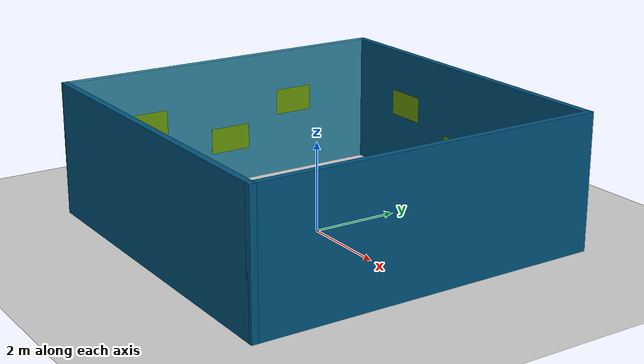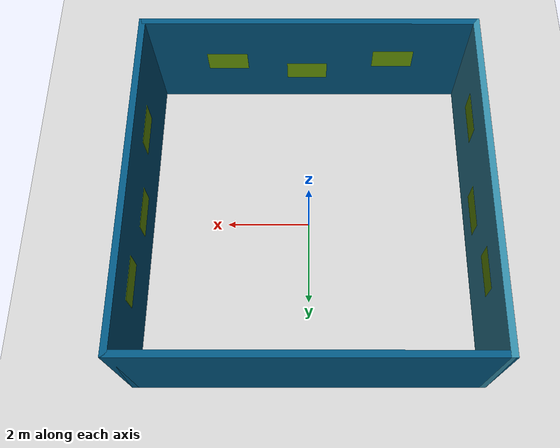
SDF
<sdf version="1.6">
 <world name="default">
  <light name="sun" type="directional">
   <pose>0 0 10 0 -0 0</pose>
   <diffuse>0.8 0.8 0.8 1</diffuse>
   <specular>0.1 0.1 0.1 1</specular>
   <attenuation>
    <range>1000</range>
    <constant>0.9</constant>
    <linear>0.01</linear>
    <quadratic>0.001</quadratic>
   </attenuation>
   <direction>-0.5 0.5 -1</direction>
  </light>
  <model name="ground_plane">
   <static>1</static>
   <link name="link">
    <collision name="collision">
     <geometry><plane><normal>0 0 1</normal><size>100 100</size></plane></geometry>
     <surface><friction><ode><mu>100</mu><mu2>50</mu2></ode></friction></surface>
    </collision>
    <visual name="visual">
     <cast_shadows>0</cast_shadows>
     <geometry><plane><normal>0 0 1</normal><size>100 100</size></plane></geometry>
     <material>
      <script><uri>file://media/materials/scripts/gazebo.material</uri><name>Gazebo/Grey</name></script>
     </material>
    </visual>
   </link>
  </model>
  <gravity>0 0 -9.8</gravity>
  <magnetic_field>6e-06 2.3e-05 -4.2e-05</magnetic_field>
  <atmosphere type="adiabatic"/>
  <physics name="default_physics" default="0" type="ode">
   <max_step_size>0.001</max_step_size>
   <real_time_factor>1</real_time_factor>
   <real_time_update_rate>1000</real_time_update_rate>
  </physics>
  <scene><ambient>0.4 0.4 0.4 1</ambient><background>0.7 0.7 0.7 1</background><shadows>1</shadows></scene>
  <spherical_coordinates>
   <surface_model>EARTH_WGS84</surface_model>
   <latitude_deg>0</latitude_deg>
   <longitude_deg>0</longitude_deg>
   <elevation>0</elevation>
   <heading_deg>0</heading_deg>
  </spherical_coordinates>
  <model name="BlueWall">
   <link name="Wall_10">
    <collision name="Wall_10_Collision">
     <geometry><box><size>8 0.15 3</size></box></geometry>
     <pose>0 0 1.5 0 -0 0</pose>
    </collision>
    <visual name="Wall_10_Visual">
     <pose>0 0 1.5 0 -0 0</pose>
     <geometry><box><size>8 0.15 3</size></box></geometry>
     <material>
      <script><uri>file://media/materials/scripts/gazebo.material</uri><name>Gazebo/Grey</name></script>
      <ambient>0 0.333333 0.498039 1</ambient>
     </material>
    </visual>
    <pose>0 -3.925 0 0 -0 0</pose>
   </link>
   <link name="Wall_13">
    <collision name="Wall_13_Collision">
     <geometry><box><size>8 0.15 3</size></box></geometry>
     <pose>0 0 1.5 0 -0 0</pose>
    </collision>
    <visual name="Wall_13_Visual">
     <pose>0 0 1.5 0 -0 0</pose>
     <geometry><box><size>8 0.15 3</size></box></geometry>
     <material>
      <script><uri>file://media/materials/scripts/gazebo.material</uri><name>Gazebo/Grey</name></script>
      <ambient>0.196078 0.537255 0.647059 1</ambient>
     </material>
    </visual>
    <pose>-3.925 0 0 0 -0 1.5708</pose>
   </link>
   <link name="Wall_14">
    <collision name="Wall_14_Collision">
     <geometry><box><size>8 0.15 3</size></box></geometry>
     <pose>0 0 1.5 0 -0 0</pose>
    </collision>
    <visual name="Wall_14_Visual">
     <pose>0 0 1.5 0 -0 0</pose>
     <geometry><box><size>8 0.15 3</size></box></geometry>
     <material>
      <script><uri>file://media/materials/scripts/gazebo.material</uri><name>Gazebo/Grey</name></script>
      <ambient>0 0.333333 0.498039 1</ambient>
     </material>
    </visual>
    <pose>0 3.925 0 0 -0 0</pose>
   </link>
   <link name="Wall_15">
    <collision name="Wall_15_Collision">
     <geometry><box><size>8 0.15 3</size></box></geometry>
     <pose>0 0 1.5 0 -0 0</pose>
    </collision>
    <visual name="Wall_15_Visual">
     <pose>0 0 1.5 0 -0 0</pose>
     <geometry><box><size>8 0.15 3</size></box></geometry>
     <material>
      <script><uri>file://media/materials/scripts/gazebo.material</uri><name>Gazebo/Grey</name></script>
      <ambient>0 0.333333 0.498039 1</ambient>
     </material>
    </visual>
    <pose>3.925 0 0 0 0 -1.5708</pose>
   </link>
   <static>1</static>
  </model>
  <model name="Green_Brick">
   <pose>-2.00015 3.92205 1.42278 0 -0 0</pose>
   <link name="Wall_2">
    <collision name="Wall_2_Collision">
     <geometry><box><size>1 0.15 0.6</size></box></geometry>
     <pose>0 0 0.3 0 -0 0</pose>
    </collision>
    <visual name="Wall_2_Visual">
     <pose>0 0 0.3 0 -0 0</pose>
     <geometry><box><size>1 0.15 0.6</size></box></geometry>
     <material>
      <script><uri>file://media/materials/scripts/gazebo.material</uri><name>Gazebo/Grey</name></script>
      <ambient>0.419608 0.615686 0.0313726 1</ambient>
     </material>
    </visual>
   </link>
   <static>1</static>
  </model>
  <model name="Green_Brick_clone">
   <pose>1.9182 3.9239 1.36322 0 -0 0</pose>
   <link name="Wall_2">
    <collision name="Wall_2_Collision">
     <geometry><box><size>1 0.15 0.6</size></box></geometry>
     <pose>0 0 0.3 0 -0 0</pose>
    </collision>
    <visual name="Wall_2_Visual">
     <pose>0 0 0.3 0 -0 0</pose>
     <geometry><box><size>1 0.15 0.6</size></box></geometry>
     <material>
      <script><uri>file://media/materials/scripts/gazebo.material</uri><name>Gazebo/Grey</name></script>
      <ambient>0.419608 0.615686 0.0313726 1</ambient>
     </material>
    </visual>
   </link>
   <static>1</static>
  </model>
  <model name="Green_Brick_clone_0">
   <pose>-0.019789 3.92169 0.751076 0 -0 0</pose>
   <link name="Wall_2">
    <collision name="Wall_2_Collision">
     <geometry><box><size>1 0.15 0.6</size></box></geometry>
     <pose>0 0 0.3 0 -0 0</pose>
    </collision>
    <visual name="Wall_2_Visual">
     <pose>0 0 0.3 0 -0 0</pose>
     <geometry><box><size>1 0.15 0.6</size></box></geometry>
     <material>
      <script><uri>file://media/materials/scripts/gazebo.material</uri><name>Gazebo/Grey</name></script>
      <ambient>0.419608 0.615686 0.0313726 1</ambient>
     </material>
    </visual>
   </link>
   <static>1</static>
  </model>
  <model name="Green_Brick_clone_clone">
   <pose>0.056841 -3.92155 0.80898 0 -0 0</pose>
   <link name="Wall_2">
    <collision name="Wall_2_Collision">
     <geometry><box><size>1 0.15 0.6</size></box></geometry>
     <pose>0 0 0.3 0 -0 0</pose>
    </collision>
    <visual name="Wall_2_Visual">
     <pose>0 0 0.3 0 -0 0</pose>
     <geometry><box><size>1 0.15 0.6</size></box></geometry>
     <material>
      <script><uri>file://media/materials/scripts/gazebo.material</uri><name>Gazebo/Grey</name></script>
      <ambient>0.419608 0.615686 0.0313726 1</ambient>
     </material>
    </visual>
   </link>
   <static>1</static>
  </model>
  <model name="Green_Brick_clone_clone_0">
   <pose>-2.08097 -3.9232 1.31665 0 -0 0</pose>
   <link name="Wall_2">
    <collision name="Wall_2_Collision">
     <geometry><box><size>1 0.15 0.6</size></box></geometry>
     <pose>0 0 0.3 0 -0 0</pose>
    </collision>
    <visual name="Wall_2_Visual">
     <pose>0 0 0.3 0 -0 0</pose>
     <geometry><box><size>1 0.15 0.6</size></box></geometry>
     <material>
      <script><uri>file://media/materials/scripts/gazebo.material</uri><name>Gazebo/Grey</name></script>
      <ambient>0.419608 0.615686 0.0313726 1</ambient>
     </material>
    </visual>
   </link>
   <static>1</static>
  </model>
  <model name="Green_Brick_clone_clone_1">
   <pose>2.04138 -3.91871 1.21745 0 -0 0</pose>
   <link name="Wall_2">
    <collision name="Wall_2_Collision">
     <geometry><box><size>1 0.15 0.6</size></box></geometry>
     <pose>0 0 0.3 0 -0 0</pose>
    </collision>
    <visual name="Wall_2_Visual">
     <pose>0 0 0.3 0 -0 0</pose>
     <geometry><box><size>1 0.15 0.6</size></box></geometry>
     <material>
      <script><uri>file://media/materials/scripts/gazebo.material</uri><name>Gazebo/Grey</name></script>
      <ambient>0.419608 0.615686 0.0313726 1</ambient>
     </material>
    </visual>
   </link>
   <static>1</static>
  </model>
  <model name="Green_Brick_clone_3_clone_1">
   <pose>3.91864 2.07016 1.42278 0 -0 1.57312</pose>
   <link name="Wall_2">
    <collision name="Wall_2_Collision">
     <geometry><box><size>1 0.15 0.6</size></box></geometry>
     <pose>0 0 0.3 0 -0 0</pose>
    </collision>
    <visual name="Wall_2_Visual">
     <pose>0 0 0.3 0 -0 0</pose>
     <geometry><box><size>1 0.15 0.6</size></box></geometry>
     <material>
      <script><uri>file://media/materials/scripts/gazebo.material</uri><name>Gazebo/Grey</name></script>
      <ambient>0.419608 0.615686 0.0313726 1</ambient>
     </material>
    </visual>
   </link>
   <static>1</static>
  </model>
  <model name="Green_Brick_clone_3_clone_1_clone">
   <pose>3.92154 0.180779 0.87635 0 -0 1.57312</pose>
   <link name="Wall_2">
    <collision name="Wall_2_Collision">
     <geometry><box><size>1 0.15 0.6</size></box></geometry>
     <pose>0 0 0.3 0 -0 0</pose>
    </collision>
    <visual name="Wall_2_Visual">
     <pose>0 0 0.3 0 -0 0</pose>
     <geometry><box><size>1 0.15 0.6</size></box></geometry>
     <material>
      <script><uri>file://media/materials/scripts/gazebo.material</uri><name>Gazebo/Grey</name></script>
      <ambient>0.419608 0.615686 0.0313726 1</ambient>
     </material>
    </visual>
   </link>
   <static>1</static>
  </model>
  <model name="Green_Brick_clone_3_clone_1_clone_0">
   <pose>3.91926 -1.71847 1.42278 0 -0 1.57312</pose>
   <link name="Wall_2">
    <collision name="Wall_2_Collision">
     <geometry><box><size>1 0.15 0.6</size></box></geometry>
     <pose>0 0 0.3 0 -0 0</pose>
    </collision>
    <visual name="Wall_2_Visual">
     <pose>0 0 0.3 0 -0 0</pose>
     <geometry><box><size>1 0.15 0.6</size></box></geometry>
     <material>
      <script><uri>file://media/materials/scripts/gazebo.material</uri><name>Gazebo/Grey</name></script>
      <ambient>0.419608 0.615686 0.0313726 1</ambient>
     </material>
    </visual>
   </link>
   <static>1</static>
  </model>
  <model name="Green_Brick_clone_3_clone_1_clone_1">
   <pose>-3.92085 -2.05561 1.42278 0 -0 1.57312</pose>
   <link name="Wall_2">
    <collision name="Wall_2_Collision">
     <geometry><box><size>1 0.15 0.6</size></box></geometry>
     <pose>0 0 0.3 0 -0 0</pose>
    </collision>
    <visual name="Wall_2_Visual">
     <pose>0 0 0.3 0 -0 0</pose>
     <geometry><box><size>1 0.15 0.6</size></box></geometry>
     <material>
      <script><uri>file://media/materials/scripts/gazebo.material</uri><name>Gazebo/Grey</name></script>
      <ambient>0.419608 0.615686 0.0313726 1</ambient>
     </material>
    </visual>
   </link>
   <static>1</static>
  </model>
  <model name="Green_Brick_clone_3_clone_1_clone_2">
   <pose>-3.92249 0.08578 0.770487 0 -0 1.57312</pose>
   <link name="Wall_2">
    <collision name="Wall_2_Collision">
     <geometry><box><size>1 0.15 0.6</size></box></geometry>
     <pose>0 0 0.3 0 -0 0</pose>
    </collision>
    <visual name="Wall_2_Visual">
     <pose>0 0 0.3 0 -0 0</pose>
     <geometry><box><size>1 0.15 0.6</size></box></geometry>
     <material>
      <script><uri>file://media/materials/scripts/gazebo.material</uri><name>Gazebo/Grey</name></script>
      <ambient>0.419608 0.615686 0.0313726 1</ambient>
     </material>
    </visual>
   </link>
   <static>1</static>
  </model>
  <model name="Green_Brick_clone_3_clone_1_clone_3">
   <pose>-3.92395 1.86812 1.46715 0 -0 1.57312</pose>
   <link name="Wall_2">
    <collision name="Wall_2_Collision">
     <geometry><box><size>1 0.15 0.6</size></box></geometry>
     <pose>0 0 0.3 0 -0 0</pose>
    </collision>
    <visual name="Wall_2_Visual">
     <pose>0 0 0.3 0 -0 0</pose>
     <geometry><box><size>1 0.15 0.6</size></box></geometry>
     <material>
      <script><uri>file://media/materials/scripts/gazebo.material</uri><name>Gazebo/Grey</name></script>
      <ambient>0.419608 0.615686 0.0313726 1</ambient>
     </material>
    </visual>
   </link>
   <static>1</static>
  </model>
 </world>
</sdf>
